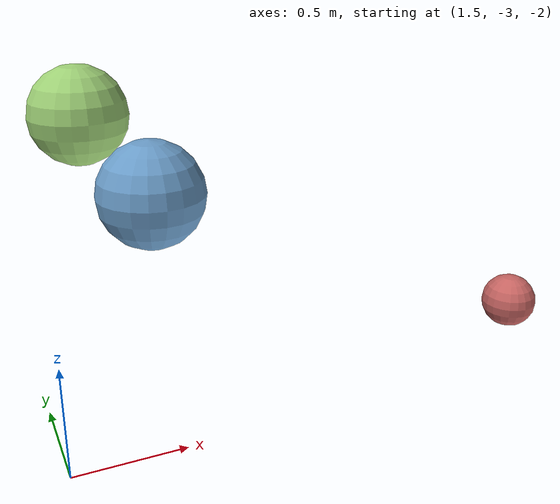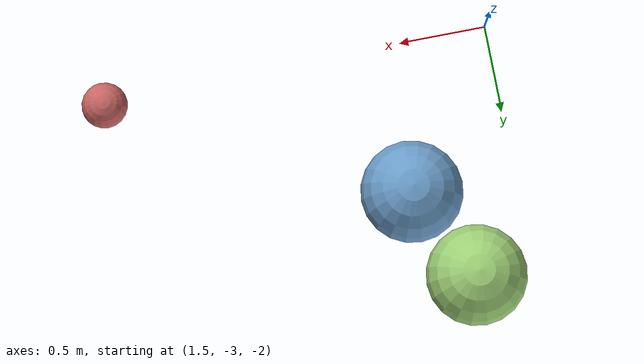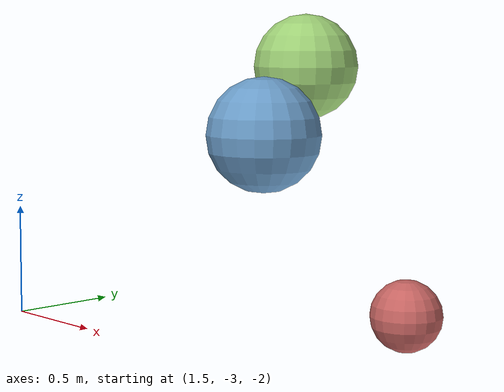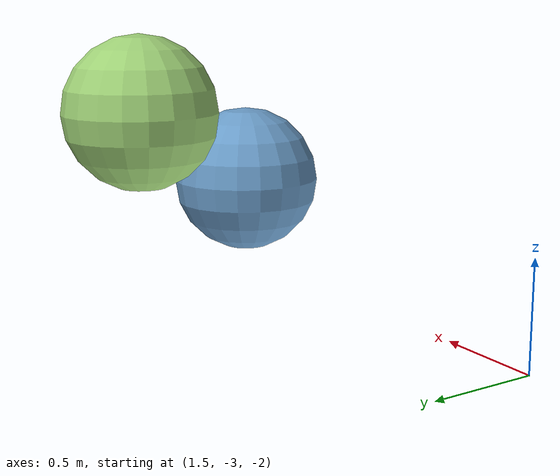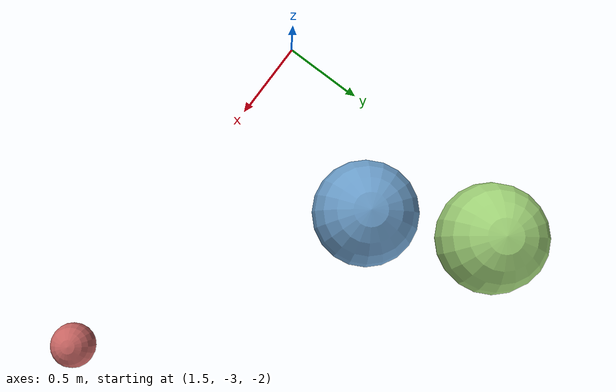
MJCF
<mujoco>
            <compiler angle="radian" autolimits="true" />
            <compiler meshdir="asset" texturedir="asset" assetdir="asset" />
            <option gravity="0 0 -9.81" />
            <default class="main">
            <geom friction="0 0 0" solimp="0.9 1 0.001 0.01 20" solref="0.02 1" condim="1" />
        </default>

        <visual>
            <headlight diffuse="0.7 0.7 0.7" ambient="0.5 0.5 0.5" />
            <global offwidth="1920" offheight="1080" />
        </visual>

        <asset>
            <texture type="skybox" builtin="gradient" rgb1="0 0.5 0.7" rgb2="0 0 0" width="512" height="512" />
            <texture type="2d" name="checks1" builtin="checker" rgb1="1 1 1" rgb2="0 0 0" width="256" height="256" />
            <material name="test_color" texture="checks1" texuniform="true" texrepeat="2 2" />
            <material name="reflectance" reflectance=".4" />
            <texture name="grid" type="2d" builtin="checker" width="512" height="512" rgb1="1.0 0.6235 0.1098" rgb2="1.0 0.749 0.4118" />
            <texture name="white-texture-background" type="2d" file="/home/aryansatpathy/DevStuff/cmu/PHO/sim/geom_sources/fixed_sources/rocket/rocket.white-texture-background.png" content_type="image/png" />
            <material name="pulley" texture="grid" texrepeat="2 2" texuniform="true" />

        </asset>
        <worldbody><body name="twodcollisionplane_0.sphere-0" pos="3.72 -2.909845356715714 -1.6799999999999997" quat="1.0 0.0 0.0 0.0"><geom name="twodcollisionplane_0.sphere-0.geom" type="sphere" pos="0 0 0" size="0.13" material="reflectance" rgba="0.7939032462584333 0.4017260723617209 0.3926602565188379 1.0" mass="2" quat="0 0 0 1" contype="1" conaffinity="1" />
<site name="twodcollisionplane_0.sphere-0.site" pos="0 0 0" quat="1.0 -0.0 -0.0 -0.0" />
<site name="twodcollisionplane_0.sphere-0.center_site" pos="0 0 0" quat="1.0 -0.0 -0.0 -0.0" />
<joint name="twodcollisionplane_0.sphere-0.joint-1" type="slide" axis="0 0.8660254037844387 0.49999999999999994" pos="0 0 0" />
<joint name="twodcollisionplane_0.sphere-0.joint-2" type="slide" axis="1 0 0" pos="0 0 0" />
</body>
<body name="twodcollisionplane_0.sphere-1" pos="2.15 -2.0438199529312753 -1.1799999999999997" quat="1.0 0.0 0.0 0.0"><geom name="twodcollisionplane_0.sphere-1.geom" type="sphere" pos="0 0 0" size="0.28" material="reflectance" rgba="0.42392076496593306 0.6249223453743648 0.8016506421384342 1.0" mass="5" quat="0 0 0 1" contype="1" conaffinity="1" />
<site name="twodcollisionplane_0.sphere-1.site" pos="0 0 0" quat="1.0 -0.0 -0.0 -0.0" />
<site name="twodcollisionplane_0.sphere-1.center_site" pos="0 0 0" quat="1.0 -0.0 -0.0 -0.0" />
<joint name="twodcollisionplane_0.sphere-1.joint-1" type="slide" axis="0 0.8660254037844387 0.49999999999999994" pos="0 0 0" />
<joint name="twodcollisionplane_0.sphere-1.joint-2" type="slide" axis="1 0 0" pos="0 0 0" />
</body>
<body name="twodcollisionplane_0.sphere-2" pos="1.92 -1.5068842025849234 -0.8699999999999999" quat="1.0 0.0 0.0 0.0"><geom name="twodcollisionplane_0.sphere-2.geom" type="sphere" pos="0 0 0" size="0.27" material="reflectance" rgba="0.6303694870799497 0.8295739830280978 0.4693346267634652 1.0" mass="4" quat="0 0 0 1" contype="1" conaffinity="1" />
<site name="twodcollisionplane_0.sphere-2.site" pos="0 0 0" quat="1.0 -0.0 -0.0 -0.0" />
<site name="twodcollisionplane_0.sphere-2.center_site" pos="0 0 0" quat="1.0 -0.0 -0.0 -0.0" />
<joint name="twodcollisionplane_0.sphere-2.joint-1" type="slide" axis="0 0.8660254037844387 0.49999999999999994" pos="0 0 0" />
<joint name="twodcollisionplane_0.sphere-2.joint-2" type="slide" axis="1 0 0" pos="0 0 0" />
</body>
</worldbody><sensor>

        </sensor>
        <custom>
            <text name="coefficient_restitution" data="(twodcollisionplane_0.sphere-0, twodcollisionplane_0.sphere-1, 0.5)" />

        </custom>
        <contact>
            <pair geom1="twodcollisionplane_0.sphere-0.geom" geom2="twodcollisionplane_0.sphere-1.geom" solref="-2500 0" />

        </contact>
        <actuator>

        </actuator>
    </mujoco>
